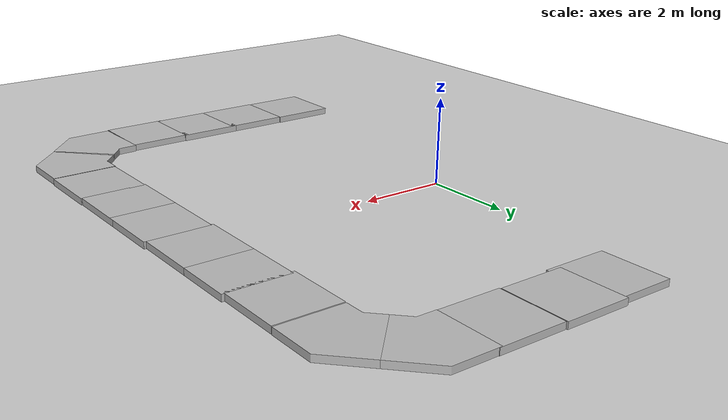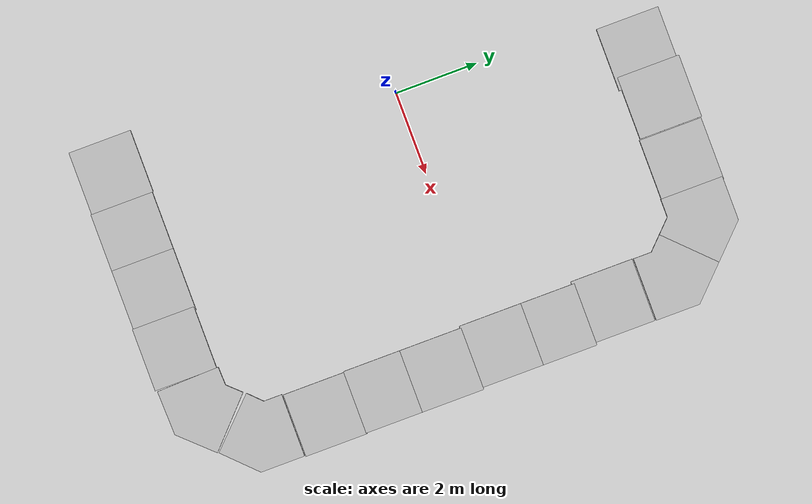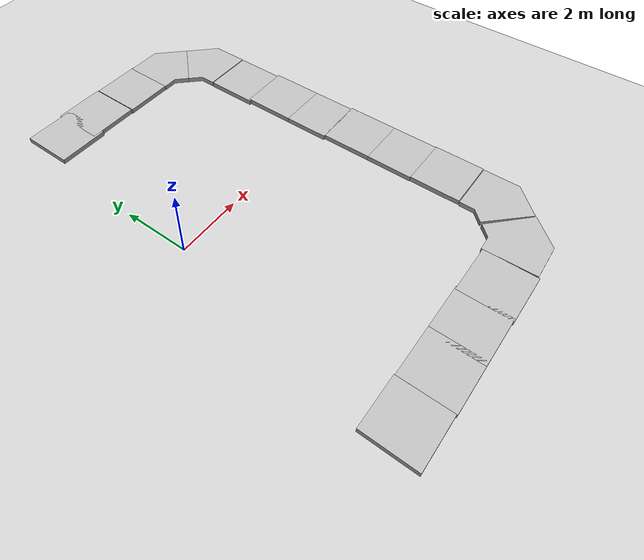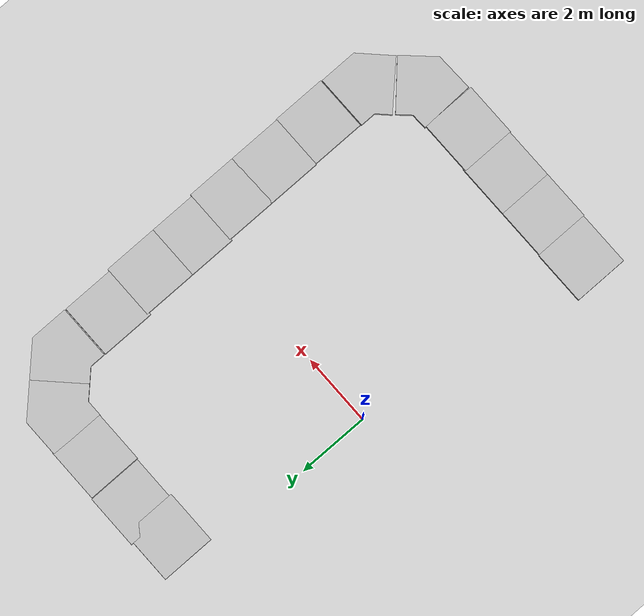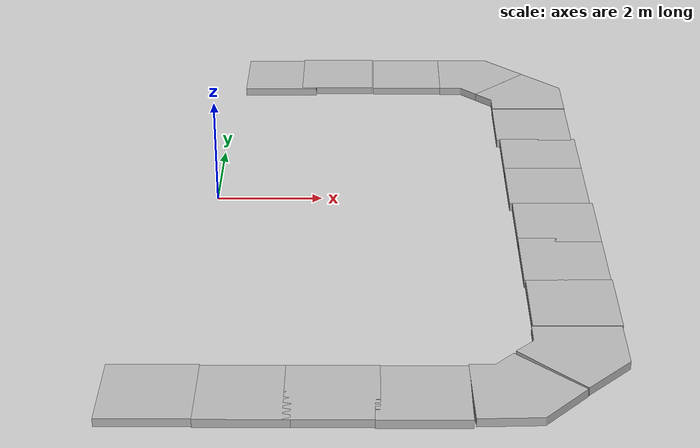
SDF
<sdf version="1.6">
 <world name="default">
  <model name="ground_plane">
   <static>1</static>
   <link name="link">
    <collision name="collision">
     <geometry><plane><normal>0 0 1</normal><size>100 100</size></plane></geometry>
     <surface>
      <contact><collide_bitmask>65535</collide_bitmask></contact>
      <friction><ode><mu>100</mu><mu2>50</mu2></ode></friction>
     </surface>
    </collision>
    <visual name="visual">
     <cast_shadows>0</cast_shadows>
     <geometry><plane><normal>0 0 1</normal><size>100 100</size></plane></geometry>
     <material>
      <script><uri>file://media/materials/scripts/gazebo.material</uri><name>Gazebo/Grey</name></script>
     </material>
    </visual>
   </link>
  </model>
  <model name="walkway_metal_45_3">
   <static>1</static>
   <link name="link">
    <collision name="collision">
     <pose>0 0.538815 0.076075 0 -0 0</pose>
     <geometry><box><size>1.524 1.07763 0.15215</size></box></geometry>
    </collision>
    <collision name="collision2">
     <pose>0.15793 0.92 0.076075 0 0 -0.785398</pose>
     <geometry><box><size>1.524 1.07763 0.15215</size></box></geometry>
    </collision>
    <visual name="visual">
     <geometry>
      <mesh><scale>0.001 0.001 0.001</scale><uri>model://walkway_metal_45/meshes/mesh.obj</uri></mesh>
     </geometry>
    </visual>
   </link>
   <pose>4.45182 5.67103 -0.000254 0 0 -1.5708</pose>
  </model>
  <model name="walkway_metal_45_4">
   <static>1</static>
   <link name="link">
    <collision name="collision">
     <pose>0 0.538815 0.076075 0 -0 0</pose>
     <geometry><box><size>1.524 1.07763 0.15215</size></box></geometry>
    </collision>
    <collision name="collision2">
     <pose>0.15793 0.92 0.076075 0 0 -0.785398</pose>
     <geometry><box><size>1.524 1.07763 0.15215</size></box></geometry>
    </collision>
    <visual name="visual">
     <geometry>
      <mesh><scale>0.001 0.001 0.001</scale><uri>model://walkway_metal_45/meshes/mesh.obj</uri></mesh>
     </geometry>
    </visual>
   </link>
   <pose>5.75253 5.13216 -0.000254 0 0 -2.35619</pose>
  </model>
  <model name="walkway_metal_straight_3">
   <static>1</static>
   <link name="link">
    <collision name="collision">
     <pose>0 0.762 0.076075 0 -0 0</pose>
     <geometry><box><size>1.524 1.524 0.15215</size></box></geometry>
    </collision>
    <visual name="visual">
     <geometry>
      <mesh><scale>0.001 0.001 0.001</scale><uri>model://walkway_metal_straight/meshes/mesh.obj</uri></mesh>
     </geometry>
    </visual>
   </link>
   <pose>6.40008 -0.481222 -0.000508 0 0 -3.14159</pose>
  </model>
  <model name="walkway_metal_straight_4">
   <static>1</static>
   <link name="link">
    <collision name="collision">
     <pose>0 0.762 0.076075 0 -0 0</pose>
     <geometry><box><size>1.524 1.524 0.15215</size></box></geometry>
    </collision>
    <visual name="visual">
     <geometry>
      <mesh><scale>0.001 0.001 0.001</scale><uri>model://walkway_metal_straight/meshes/mesh.obj</uri></mesh>
     </geometry>
    </visual>
   </link>
   <pose>6.40015 -1.87448 -0.000508 0 0 -3.14159</pose>
  </model>
  <model name="walkway_metal_45_5">
   <static>1</static>
   <link name="link">
    <collision name="collision">
     <pose>0 0.538815 0.076075 0 -0 0</pose>
     <geometry><box><size>1.524 1.07763 0.15215</size></box></geometry>
    </collision>
    <collision name="collision2">
     <pose>0.15793 0.92 0.076075 0 0 -0.785398</pose>
     <geometry><box><size>1.524 1.07763 0.15215</size></box></geometry>
    </collision>
    <visual name="visual">
     <geometry>
      <mesh><scale>0.001 0.001 0.001</scale><uri>model://walkway_metal_45/meshes/mesh.obj</uri></mesh>
     </geometry>
    </visual>
   </link>
   <pose>6.40006 -4.9232 -0.000254 0 0 -3.14159</pose>
  </model>
  <model name="walkway_metal_straight_5">
   <static>1</static>
   <link name="link">
    <collision name="collision">
     <pose>0 0.762 0.076075 0 -0 0</pose>
     <geometry><box><size>1.524 1.524 0.15215</size></box></geometry>
    </collision>
    <visual name="visual">
     <geometry>
      <mesh><scale>0.001 0.001 0.001</scale><uri>model://walkway_metal_straight/meshes/mesh.obj</uri></mesh>
     </geometry>
    </visual>
   </link>
   <pose>6.42064 -3.37496 -0.000508 0 -0 3.14159</pose>
  </model>
  <model name="walkway_metal_45_9">
   <static>1</static>
   <link name="link">
    <collision name="collision">
     <pose>0 0.538815 0.076075 0 -0 0</pose>
     <geometry><box><size>1.524 1.07763 0.15215</size></box></geometry>
    </collision>
    <collision name="collision2">
     <pose>0.15793 0.92 0.076075 0 0 -0.785398</pose>
     <geometry><box><size>1.524 1.07763 0.15215</size></box></geometry>
    </collision>
    <visual name="visual">
     <geometry>
      <mesh><scale>0.001 0.001 0.001</scale><uri>model://walkway_metal_45/meshes/mesh.obj</uri></mesh>
     </geometry>
    </visual>
   </link>
   <pose>5.83258 -6.27089 -0.000254 0 -0 2.38587</pose>
  </model>
  <model name="walkway_metal_straight_6">
   <static>1</static>
   <link name="link">
    <collision name="collision">
     <pose>0 0.762 0.076075 0 -0 0</pose>
     <geometry><box><size>1.524 1.524 0.15215</size></box></geometry>
    </collision>
    <visual name="visual">
     <geometry>
      <mesh><scale>0.001 0.001 0.001</scale><uri>model://walkway_metal_straight/meshes/mesh.obj</uri></mesh>
     </geometry>
    </visual>
   </link>
   <pose>3.01304 -6.89051 -0.000508 0 0 -1.5708</pose>
  </model>
  <model name="walkway_metal_straight_7">
   <static>1</static>
   <link name="link">
    <collision name="collision">
     <pose>0 0.762 0.076075 0 -0 0</pose>
     <geometry><box><size>1.524 1.524 0.15215</size></box></geometry>
    </collision>
    <visual name="visual">
     <geometry>
      <mesh><scale>0.001 0.001 0.001</scale><uri>model://walkway_metal_straight/meshes/mesh.obj</uri></mesh>
     </geometry>
    </visual>
   </link>
   <pose>3.10016 -6.86844 -0.000508 0 -0 1.5708</pose>
  </model>
  <model name="walkway_metal_straight_8">
   <static>1</static>
   <link name="link">
    <collision name="collision">
     <pose>0 0.762 0.076075 0 -0 0</pose>
     <geometry><box><size>1.524 1.524 0.15215</size></box></geometry>
    </collision>
    <visual name="visual">
     <geometry>
      <mesh><scale>0.001 0.001 0.001</scale><uri>model://walkway_metal_straight/meshes/mesh.obj</uri></mesh>
     </geometry>
    </visual>
   </link>
   <pose>1.70685 -6.86858 -0.000508 0 -0 1.5708</pose>
  </model>
  <model name="walkway_metal_straight_9">
   <static>1</static>
   <link name="link">
    <collision name="collision">
     <pose>0 0.762 0.076075 0 -0 0</pose>
     <geometry><box><size>1.524 1.524 0.15215</size></box></geometry>
    </collision>
    <visual name="visual">
     <geometry>
      <mesh><scale>0.001 0.001 0.001</scale><uri>model://walkway_metal_straight/meshes/mesh.obj</uri></mesh>
     </geometry>
    </visual>
   </link>
   <pose>0.182828 -6.84693 -0.000508 0 -0 1.5708</pose>
  </model>
  <model name="walkway_metal_straight_16_clone">
   <static>1</static>
   <link name="link">
    <collision name="collision">
     <pose>0 0.762 0.076075 0 -0 0</pose>
     <geometry><box><size>1.524 1.524 0.15215</size></box></geometry>
    </collision>
    <visual name="visual">
     <geometry>
      <mesh><scale>0.001 0.001 0.001</scale><uri>model://walkway_metal_straight/meshes/mesh.obj</uri></mesh>
     </geometry>
    </visual>
   </link>
   <pose>6.34975 -0.510048 -0.000508 0 -0 4e-06</pose>
  </model>
  <model name="walkway_metal_straight_16_clone_0">
   <static>1</static>
   <link name="link">
    <collision name="collision">
     <pose>0 0.762 0.076075 0 -0 0</pose>
     <geometry><box><size>1.524 1.524 0.15215</size></box></geometry>
    </collision>
    <visual name="visual">
     <geometry>
      <mesh><scale>0.001 0.001 0.001</scale><uri>model://walkway_metal_straight/meshes/mesh.obj</uri></mesh>
     </geometry>
    </visual>
   </link>
   <pose>6.34972 0.818326 -0.000508 0 -0 4e-06</pose>
  </model>
  <model name="walkway_metal_straight_16_clone_1">
   <static>1</static>
   <link name="link">
    <collision name="collision">
     <pose>0 0.762 0.076075 0 -0 0</pose>
     <geometry><box><size>1.524 1.524 0.15215</size></box></geometry>
    </collision>
    <visual name="visual">
     <geometry>
      <mesh><scale>0.001 0.001 0.001</scale><uri>model://walkway_metal_straight/meshes/mesh.obj</uri></mesh>
     </geometry>
    </visual>
   </link>
   <pose>6.28439 2.27764 -0.000508 0 -0 4e-06</pose>
  </model>
  <model name="walkway_metal_straight_2_clone">
   <static>1</static>
   <link name="link">
    <collision name="collision">
     <pose>0 0.762 0.076075 0 -0 0</pose>
     <geometry><box><size>1.524 1.524 0.15215</size></box></geometry>
    </collision>
    <visual name="visual">
     <geometry>
      <mesh><scale>0.001 0.001 0.001</scale><uri>model://walkway_metal_straight/meshes/mesh.obj</uri></mesh>
     </geometry>
    </visual>
   </link>
   <pose>2.99838 5.68234 -0.000508 0 0 -1.5708</pose>
  </model>
  <model name="walkway_metal_straight_2_clone_0">
   <static>1</static>
   <link name="link">
    <collision name="collision">
     <pose>0 0.762 0.076075 0 -0 0</pose>
     <geometry><box><size>1.524 1.524 0.15215</size></box></geometry>
    </collision>
    <visual name="visual">
     <geometry>
      <mesh><scale>0.001 0.001 0.001</scale><uri>model://walkway_metal_straight/meshes/mesh.obj</uri></mesh>
     </geometry>
    </visual>
   </link>
   <pose>1.45402 5.7069 -0.000508 0 0 -1.5708</pose>
  </model>
  <model name="walkway_metal_straight_2_clone_1">
   <static>1</static>
   <link name="link">
    <collision name="collision">
     <pose>0 0.762 0.076075 0 -0 0</pose>
     <geometry><box><size>1.524 1.524 0.15215</size></box></geometry>
    </collision>
    <visual name="visual">
     <geometry>
      <mesh><scale>0.001 0.001 0.001</scale><uri>model://walkway_metal_straight/meshes/mesh.obj</uri></mesh>
     </geometry>
    </visual>
   </link>
   <pose>0.234404 5.64154 -0.000508 0 0 -1.5708</pose>
  </model>
 </world>
</sdf>
